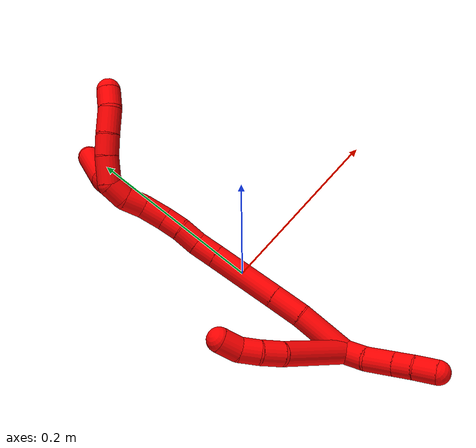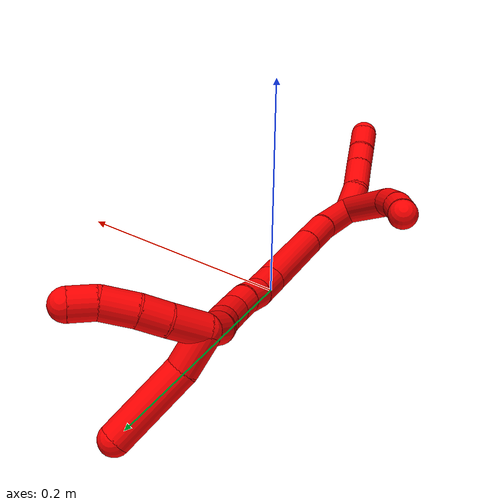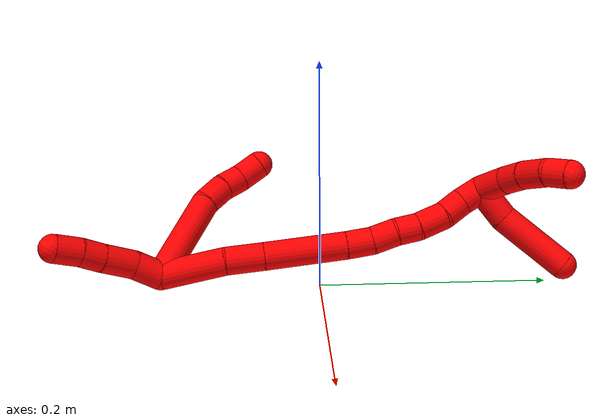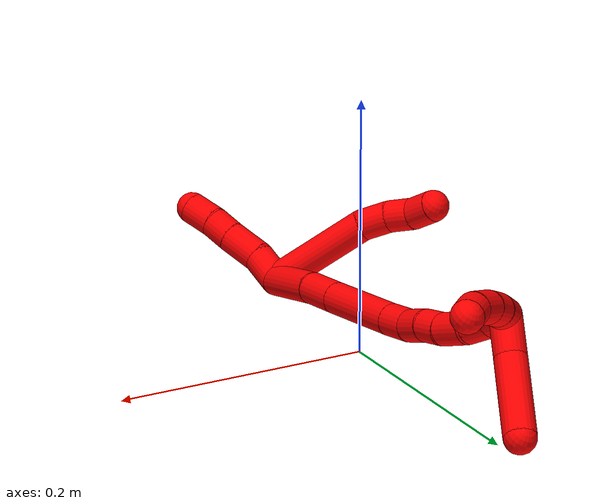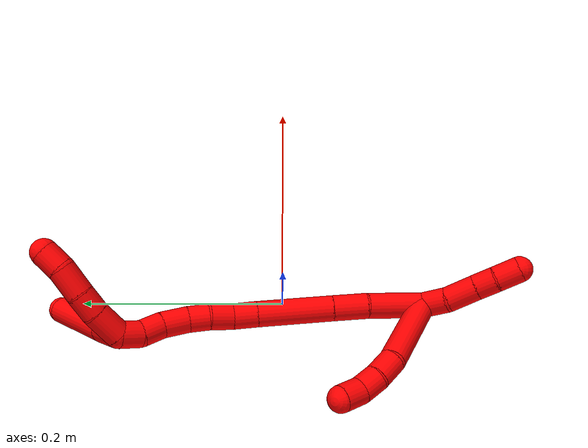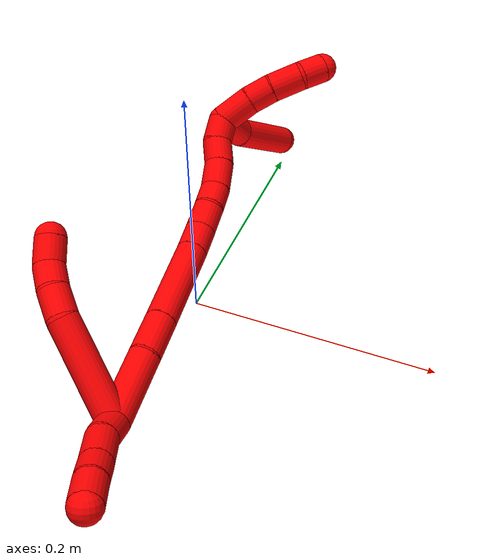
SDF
<sdf version="1.7">
 <world name="default">
  <model name="photoneo_s_sensor">
   <static>1</static>
   <pose>0 0 2 1.57079 1.57079 3.14159</pose>
   <link name="link">
    <inertial><mass>0.1</mass></inertial>
    <sensor name="sensor" type="depth">
     <update_rate>30</update_rate>
     <camera>
      <horizontal_fov>1.22</horizontal_fov>
      <image><width>1920</width><height>1200</height><format>B8G8R8</format></image>
      <clip><near>0.1</near><far>4</far></clip>
      <depth_camera><output>points</output></depth_camera>
     </camera>
     <plugin name="camera_plugin" filename="libgazebo_ros_depth_camera.so">
      <baseline>0.2</baseline>
      <alwaysOn>1</alwaysOn>
      <updateRate>0.0</updateRate>
      <cameraName>camera_ir</cameraName>
      <imageTopicName>/camera/color/image_raw</imageTopicName>
      <cameraInfoTopicName>/camera/color/camera_info</cameraInfoTopicName>
      <depthImageTopicName>/camera/depth/image_raw</depthImageTopicName>
      <depthImageCameraInfoTopicName>/camera/depth/camera_info</depthImageCameraInfoTopicName>
      <pointCloudTopicName>/camera/depth/points</pointCloudTopicName>
      <frameName>fr_optical</frameName>
      <pointCloudCutoff>0.1</pointCloudCutoff>
      <pointCloudCutoffMax>2.0</pointCloudCutoffMax>
      <distortionK1>0</distortionK1>
      <distortionK2>0</distortionK2>
      <distortionK3>0</distortionK3>
      <distortionT1>0</distortionT1>
      <distortionT2>0</distortionT2>
      <CxPrime>0</CxPrime>
      <Cx>0</Cx>
      <Cy>0</Cy>
      <focalLength>0</focalLength>
      <hackBaseline>0</hackBaseline>
     </plugin>
    </sensor>
   </link>
  </model>
  <model name="bin">
   <static>1</static>
   <link name="bottom">
    <collision name="collision-bottom">
     <pose>0 0 -0.01 0 -0 0</pose>
     <geometry><box><size>0.8 0.6 0.02</size></box></geometry>
     <surface>
      <friction><ode><mu>100</mu><mu2>100</mu2></ode></friction>
      <contact><collide_bitmask>65535</collide_bitmask></contact>
     </surface>
    </collision>
   </link>
   <link name="west_wall">
    <collision name="collision-west_wall">
     <pose>-0.41 0 0.1 0 -0 0</pose>
     <geometry><box><size>0.02 0.6 0.2</size></box></geometry>
     <surface>
      <friction><ode><mu>100</mu><mu2>100</mu2></ode></friction>
      <contact><collide_bitmask>65535</collide_bitmask></contact>
     </surface>
    </collision>
   </link>
   <link name="east_wall">
    <collision name="collision-east_wall">
     <pose>0.41 0 0.1 0 -0 0</pose>
     <geometry><box><size>0.02 0.6 0.2</size></box></geometry>
     <surface>
      <friction><ode><mu>100</mu><mu2>100</mu2></ode></friction>
      <contact><collide_bitmask>65535</collide_bitmask></contact>
     </surface>
    </collision>
   </link>
   <link name="south_wall">
    <collision name="collision-south_wall">
     <pose>0 -0.31 0.1 0 -0 0</pose>
     <geometry><box><size>0.8 0.02 0.2</size></box></geometry>
     <surface>
      <friction><ode><mu>100</mu><mu2>100</mu2></ode></friction>
      <contact><collide_bitmask>65535</collide_bitmask></contact>
     </surface>
    </collision>
   </link>
   <link name="north_wall">
    <collision name="collision-north_wall">
     <pose>0 0.31 0.1 0 -0 0</pose>
     <geometry><box><size>0.8 0.02 0.2</size></box></geometry>
     <surface>
      <friction><ode><mu>100</mu><mu2>100</mu2></ode></friction>
      <contact><collide_bitmask>65535</collide_bitmask></contact>
     </surface>
    </collision>
   </link>
  </model>
  <model name="2">
   <static>0</static>
   <link name="2">
    <collision name="collision-cylinder-e_1_2_8">
     <pose>-0.021645 -0.002136 0.035648 0.05984 -0.544892 -0.016723</pose>
     <geometry><cylinder><radius>0.0125</radius><length>0.083518</length></cylinder></geometry>
     <surface>
      <friction><ode><mu>1.16</mu><mu2>1.16</mu2><slip1>0</slip1><slip2>0</slip2></ode></friction>
      <contact><ode><kp>1e+06</kp><kd>1</kd><max_vel>0</max_vel><min_depth>0.001</min_depth></ode></contact>
     </surface>
    </collision>
    <visual name="visual-cylinder-e_1_2_8">
     <pose>-0.021645 -0.002136 0.035648 0.05984 -0.544892 -0.016723</pose>
     <geometry><cylinder><radius>0.0125</radius><length>0.083518</length></cylinder></geometry>
     <material><ambient>1 0 0 1</ambient></material>
    </visual>
    <collision name="collision-cylinder-e_2_8_9">
     <pose>-0.050026 -0.001764 0.080783 -0.258385 -0.601605 0.08056</pose>
     <geometry><cylinder><radius>0.0125</radius><length>0.023805</length></cylinder></geometry>
     <surface>
      <friction><ode><mu>1.16</mu><mu2>1.16</mu2><slip1>0</slip1><slip2>0</slip2></ode></friction>
      <contact><ode><kp>1e+06</kp><kd>1</kd><max_vel>0</max_vel><min_depth>0.001</min_depth></ode></contact>
     </surface>
    </collision>
    <visual name="visual-cylinder-e_2_8_9">
     <pose>-0.050026 -0.001764 0.080783 -0.258385 -0.601605 0.08056</pose>
     <geometry><cylinder><radius>0.0125</radius><length>0.023805</length></cylinder></geometry>
     <material><ambient>1 0 0 1</ambient></material>
    </visual>
    <collision name="collision-cylinder-e_3_9_10">
     <pose>-0.062545 0.004807 0.097766 -0.496737 -0.595877 0.155439</pose>
     <geometry><cylinder><radius>0.0125</radius><length>0.020605</length></cylinder></geometry>
     <surface>
      <friction><ode><mu>1.16</mu><mu2>1.16</mu2><slip1>0</slip1><slip2>0</slip2></ode></friction>
      <contact><ode><kp>1e+06</kp><kd>1</kd><max_vel>0</max_vel><min_depth>0.001</min_depth></ode></contact>
     </surface>
    </collision>
    <visual name="visual-cylinder-e_3_9_10">
     <pose>-0.062545 0.004807 0.097766 -0.496737 -0.595877 0.155439</pose>
     <geometry><cylinder><radius>0.0125</radius><length>0.020605</length></cylinder></geometry>
     <material><ambient>1 0 0 1</ambient></material>
    </visual>
    <collision name="collision-cylinder-e_4_10_6">
     <pose>-0.071147 0.013019 0.115092 -0.399385 -0.258442 0.052587</pose>
     <geometry><cylinder><radius>0.0125</radius><length>0.022072</length></cylinder></geometry>
     <surface>
      <friction><ode><mu>1.16</mu><mu2>1.16</mu2><slip1>0</slip1><slip2>0</slip2></ode></friction>
      <contact><ode><kp>1e+06</kp><kd>1</kd><max_vel>0</max_vel><min_depth>0.001</min_depth></ode></contact>
     </surface>
    </collision>
    <visual name="visual-cylinder-e_4_10_6">
     <pose>-0.071147 0.013019 0.115092 -0.399385 -0.258442 0.052587</pose>
     <geometry><cylinder><radius>0.0125</radius><length>0.022072</length></cylinder></geometry>
     <material><ambient>1 0 0 1</ambient></material>
    </visual>
    <collision name="collision-cylinder-e_1_2_11">
     <pose>0.004972 -0.011969 -0.001146 1.66623 0.392115 0.430293</pose>
     <geometry><cylinder><radius>0.0125</radius><length>0.026021</length></cylinder></geometry>
     <surface>
      <friction><ode><mu>1.16</mu><mu2>1.16</mu2><slip1>0</slip1><slip2>0</slip2></ode></friction>
      <contact><ode><kp>1e+06</kp><kd>1</kd><max_vel>0</max_vel><min_depth>0.001</min_depth></ode></contact>
     </surface>
    </collision>
    <visual name="visual-cylinder-e_1_2_11">
     <pose>0.004972 -0.011969 -0.001146 1.66623 0.392115 0.430293</pose>
     <geometry><cylinder><radius>0.0125</radius><length>0.026021</length></cylinder></geometry>
     <material><ambient>1 0 0 1</ambient></material>
    </visual>
    <collision name="collision-cylinder-e_2_11_12">
     <pose>0.018027 -0.036073 -0.005689 1.84377 0.570289 0.737576</pose>
     <geometry><cylinder><radius>0.0125</radius><length>0.029945</length></cylinder></geometry>
     <surface>
      <friction><ode><mu>1.16</mu><mu2>1.16</mu2><slip1>0</slip1><slip2>0</slip2></ode></friction>
      <contact><ode><kp>1e+06</kp><kd>1</kd><max_vel>0</max_vel><min_depth>0.001</min_depth></ode></contact>
     </surface>
    </collision>
    <visual name="visual-cylinder-e_2_11_12">
     <pose>0.018027 -0.036073 -0.005689 1.84377 0.570289 0.737576</pose>
     <geometry><cylinder><radius>0.0125</radius><length>0.029945</length></cylinder></geometry>
     <material><ambient>1 0 0 1</ambient></material>
    </visual>
    <collision name="collision-cylinder-e_3_12_13">
     <pose>0.031449 -0.056567 -0.010867 1.78068 0.558421 0.680831</pose>
     <geometry><cylinder><radius>0.0125</radius><length>0.020151</length></cylinder></geometry>
     <surface>
      <friction><ode><mu>1.16</mu><mu2>1.16</mu2><slip1>0</slip1><slip2>0</slip2></ode></friction>
      <contact><ode><kp>1e+06</kp><kd>1</kd><max_vel>0</max_vel><min_depth>0.001</min_depth></ode></contact>
     </surface>
    </collision>
    <visual name="visual-cylinder-e_3_12_13">
     <pose>0.031449 -0.056567 -0.010867 1.78068 0.558421 0.680831</pose>
     <geometry><cylinder><radius>0.0125</radius><length>0.020151</length></cylinder></geometry>
     <material><ambient>1 0 0 1</ambient></material>
    </visual>
    <collision name="collision-cylinder-e_4_13_5">
     <pose>0.043067 -0.074444 -0.01619 1.92704 0.553711 0.776358</pose>
     <geometry><cylinder><radius>0.0125</radius><length>0.023883</length></cylinder></geometry>
     <surface>
      <friction><ode><mu>1.16</mu><mu2>1.16</mu2><slip1>0</slip1><slip2>0</slip2></ode></friction>
      <contact><ode><kp>1e+06</kp><kd>1</kd><max_vel>0</max_vel><min_depth>0.001</min_depth></ode></contact>
     </surface>
    </collision>
    <visual name="visual-cylinder-e_4_13_5">
     <pose>0.043067 -0.074444 -0.01619 1.92704 0.553711 0.776358</pose>
     <geometry><cylinder><radius>0.0125</radius><length>0.023883</length></cylinder></geometry>
     <material><ambient>1 0 0 1</ambient></material>
    </visual>
    <collision name="collision-cylinder-e_1_2_14">
     <pose>-0.002404 0.020836 0.019638 -0.814973 -0.083781 0.036181</pose>
     <geometry><cylinder><radius>0.0125</radius><length>0.057466</length></cylinder></geometry>
     <surface>
      <friction><ode><mu>1.16</mu><mu2>1.16</mu2><slip1>0</slip1><slip2>0</slip2></ode></friction>
      <contact><ode><kp>1e+06</kp><kd>1</kd><max_vel>0</max_vel><min_depth>0.001</min_depth></ode></contact>
     </surface>
    </collision>
    <visual name="visual-cylinder-e_1_2_14">
     <pose>-0.002404 0.020836 0.019638 -0.814973 -0.083781 0.036181</pose>
     <geometry><cylinder><radius>0.0125</radius><length>0.057466</length></cylinder></geometry>
     <material><ambient>1 0 0 1</ambient></material>
    </visual>
    <collision name="collision-cylinder-e_2_14_15">
     <pose>-0.007609 0.054976 0.049455 -0.917732 -0.165602 0.081955</pose>
     <geometry><cylinder><radius>0.0125</radius><length>0.033968</length></cylinder></geometry>
     <surface>
      <friction><ode><mu>1.16</mu><mu2>1.16</mu2><slip1>0</slip1><slip2>0</slip2></ode></friction>
      <contact><ode><kp>1e+06</kp><kd>1</kd><max_vel>0</max_vel><min_depth>0.001</min_depth></ode></contact>
     </surface>
    </collision>
    <visual name="visual-cylinder-e_2_14_15">
     <pose>-0.007609 0.054976 0.049455 -0.917732 -0.165602 0.081955</pose>
     <geometry><cylinder><radius>0.0125</radius><length>0.033968</length></cylinder></geometry>
     <material><ambient>1 0 0 1</ambient></material>
    </visual>
    <collision name="collision-cylinder-e_3_15_16">
     <pose>-0.016616 0.096834 0.081895 -0.908594 -0.169798 0.083075</pose>
     <geometry><cylinder><radius>0.0125</radius><length>0.073469</length></cylinder></geometry>
     <surface>
      <friction><ode><mu>1.16</mu><mu2>1.16</mu2><slip1>0</slip1><slip2>0</slip2></ode></friction>
      <contact><ode><kp>1e+06</kp><kd>1</kd><max_vel>0</max_vel><min_depth>0.001</min_depth></ode></contact>
     </surface>
    </collision>
    <visual name="visual-cylinder-e_3_15_16">
     <pose>-0.016616 0.096834 0.081895 -0.908594 -0.169798 0.083075</pose>
     <geometry><cylinder><radius>0.0125</radius><length>0.073469</length></cylinder></geometry>
     <material><ambient>1 0 0 1</ambient></material>
    </visual>
    <collision name="collision-cylinder-e_4_16_17">
     <pose>-0.024939 0.134395 0.111814 -0.866265 -0.177051 0.08204</pose>
     <geometry><cylinder><radius>0.0125</radius><length>0.024021</length></cylinder></geometry>
     <surface>
      <friction><ode><mu>1.16</mu><mu2>1.16</mu2><slip1>0</slip1><slip2>0</slip2></ode></friction>
      <contact><ode><kp>1e+06</kp><kd>1</kd><max_vel>0</max_vel><min_depth>0.001</min_depth></ode></contact>
     </surface>
    </collision>
    <visual name="visual-cylinder-e_4_16_17">
     <pose>-0.024939 0.134395 0.111814 -0.866265 -0.177051 0.08204</pose>
     <geometry><cylinder><radius>0.0125</radius><length>0.024021</length></cylinder></geometry>
     <material><ambient>1 0 0 1</ambient></material>
    </visual>
    <collision name="collision-cylinder-e_5_17_18">
     <pose>-0.027762 0.150576 0.128278 -0.683469 -0.062219 0.022137</pose>
     <geometry><cylinder><radius>0.0125</radius><length>0.02276</length></cylinder></geometry>
     <surface>
      <friction><ode><mu>1.16</mu><mu2>1.16</mu2><slip1>0</slip1><slip2>0</slip2></ode></friction>
      <contact><ode><kp>1e+06</kp><kd>1</kd><max_vel>0</max_vel><min_depth>0.001</min_depth></ode></contact>
     </surface>
    </collision>
    <visual name="visual-cylinder-e_5_17_18">
     <pose>-0.027762 0.150576 0.128278 -0.683469 -0.062219 0.022137</pose>
     <geometry><cylinder><radius>0.0125</radius><length>0.02276</length></cylinder></geometry>
     <material><ambient>1 0 0 1</ambient></material>
    </visual>
    <collision name="collision-cylinder-e_6_18_19">
     <pose>-0.030325 0.164913 0.143847 -0.814349 -0.186165 0.080478</pose>
     <geometry><cylinder><radius>0.0125</radius><length>0.02005</length></cylinder></geometry>
     <surface>
      <friction><ode><mu>1.16</mu><mu2>1.16</mu2><slip1>0</slip1><slip2>0</slip2></ode></friction>
      <contact><ode><kp>1e+06</kp><kd>1</kd><max_vel>0</max_vel><min_depth>0.001</min_depth></ode></contact>
     </surface>
    </collision>
    <visual name="visual-cylinder-e_6_18_19">
     <pose>-0.030325 0.164913 0.143847 -0.814349 -0.186165 0.080478</pose>
     <geometry><cylinder><radius>0.0125</radius><length>0.02005</length></cylinder></geometry>
     <material><ambient>1 0 0 1</ambient></material>
    </visual>
    <collision name="collision-cylinder-e_7_19_20">
     <pose>-0.035253 0.179433 0.160786 -0.625772 -0.240007 0.077981</pose>
     <geometry><cylinder><radius>0.0125</radius><length>0.025853</length></cylinder></geometry>
     <surface>
      <friction><ode><mu>1.16</mu><mu2>1.16</mu2><slip1>0</slip1><slip2>0</slip2></ode></friction>
      <contact><ode><kp>1e+06</kp><kd>1</kd><max_vel>0</max_vel><min_depth>0.001</min_depth></ode></contact>
     </surface>
    </collision>
    <visual name="visual-cylinder-e_7_19_20">
     <pose>-0.035253 0.179433 0.160786 -0.625772 -0.240007 0.077981</pose>
     <geometry><cylinder><radius>0.0125</radius><length>0.025853</length></cylinder></geometry>
     <material><ambient>1 0 0 1</ambient></material>
    </visual>
    <collision name="collision-cylinder-e_8_20_21">
     <pose>-0.042051 0.190673 0.18041 -0.390238 -0.349674 0.069792</pose>
     <geometry><cylinder><radius>0.0125</radius><length>0.021747</length></cylinder></geometry>
     <surface>
      <friction><ode><mu>1.16</mu><mu2>1.16</mu2><slip1>0</slip1><slip2>0</slip2></ode></friction>
      <contact><ode><kp>1e+06</kp><kd>1</kd><max_vel>0</max_vel><min_depth>0.001</min_depth></ode></contact>
     </surface>
    </collision>
    <visual name="visual-cylinder-e_8_20_21">
     <pose>-0.042051 0.190673 0.18041 -0.390238 -0.349674 0.069792</pose>
     <geometry><cylinder><radius>0.0125</radius><length>0.021747</length></cylinder></geometry>
     <material><ambient>1 0 0 1</ambient></material>
    </visual>
    <collision name="collision-cylinder-e_9_21_1">
     <pose>-0.04596 0.199279 0.199048 -0.474419 -0.017776 0.004298</pose>
     <geometry><cylinder><radius>0.0125</radius><length>0.020667</length></cylinder></geometry>
     <surface>
      <friction><ode><mu>1.16</mu><mu2>1.16</mu2><slip1>0</slip1><slip2>0</slip2></ode></friction>
      <contact><ode><kp>1e+06</kp><kd>1</kd><max_vel>0</max_vel><min_depth>0.001</min_depth></ode></contact>
     </surface>
    </collision>
    <visual name="visual-cylinder-e_9_21_1">
     <pose>-0.04596 0.199279 0.199048 -0.474419 -0.017776 0.004298</pose>
     <geometry><cylinder><radius>0.0125</radius><length>0.020667</length></cylinder></geometry>
     <material><ambient>1 0 0 1</ambient></material>
    </visual>
    <collision name="collision-cylinder-e_1_1_22">
     <pose>-0.036628 0.210923 0.217014 -0.668018 0.705215 -0.254015</pose>
     <geometry><cylinder><radius>0.0125</radius><length>0.02936</length></cylinder></geometry>
     <surface>
      <friction><ode><mu>1.16</mu><mu2>1.16</mu2><slip1>0</slip1><slip2>0</slip2></ode></friction>
      <contact><ode><kp>1e+06</kp><kd>1</kd><max_vel>0</max_vel><min_depth>0.001</min_depth></ode></contact>
     </surface>
    </collision>
    <visual name="visual-cylinder-e_1_1_22">
     <pose>-0.036628 0.210923 0.217014 -0.668018 0.705215 -0.254015</pose>
     <geometry><cylinder><radius>0.0125</radius><length>0.02936</length></cylinder></geometry>
     <material><ambient>1 0 0 1</ambient></material>
    </visual>
    <collision name="collision-cylinder-e_2_22_23">
     <pose>-0.018898 0.222834 0.231147 -0.749553 0.842982 -0.349152</pose>
     <geometry><cylinder><radius>0.0125</radius><length>0.022005</length></cylinder></geometry>
     <surface>
      <friction><ode><mu>1.16</mu><mu2>1.16</mu2><slip1>0</slip1><slip2>0</slip2></ode></friction>
      <contact><ode><kp>1e+06</kp><kd>1</kd><max_vel>0</max_vel><min_depth>0.001</min_depth></ode></contact>
     </surface>
    </collision>
    <visual name="visual-cylinder-e_2_22_23">
     <pose>-0.018898 0.222834 0.231147 -0.749553 0.842982 -0.349152</pose>
     <geometry><cylinder><radius>0.0125</radius><length>0.022005</length></cylinder></geometry>
     <material><ambient>1 0 0 1</ambient></material>
    </visual>
    <collision name="collision-cylinder-e_3_23_24">
     <pose>-0.000363 0.235085 0.241838 -0.937499 0.852965 -0.452308</pose>
     <geometry><cylinder><radius>0.0125</radius><length>0.027401</length></cylinder></geometry>
     <surface>
      <friction><ode><mu>1.16</mu><mu2>1.16</mu2><slip1>0</slip1><slip2>0</slip2></ode></friction>
      <contact><ode><kp>1e+06</kp><kd>1</kd><max_vel>0</max_vel><min_depth>0.001</min_depth></ode></contact>
     </surface>
    </collision>
    <visual name="visual-cylinder-e_3_23_24">
     <pose>-0.000363 0.235085 0.241838 -0.937499 0.852965 -0.452308</pose>
     <geometry><cylinder><radius>0.0125</radius><length>0.027401</length></cylinder></geometry>
     <material><ambient>1 0 0 1</ambient></material>
    </visual>
    <collision name="collision-cylinder-e_4_24_4">
     <pose>0.016229 0.250174 0.250655 -1.15191 0.632062 -0.418481</pose>
     <geometry><cylinder><radius>0.0125</radius><length>0.021234</length></cylinder></geometry>
     <surface>
      <friction><ode><mu>1.16</mu><mu2>1.16</mu2><slip1>0</slip1><slip2>0</slip2></ode></friction>
      <contact><ode><kp>1e+06</kp><kd>1</kd><max_vel>0</max_vel><min_depth>0.001</min_depth></ode></contact>
     </surface>
    </collision>
    <visual name="visual-cylinder-e_4_24_4">
     <pose>0.016229 0.250174 0.250655 -1.15191 0.632062 -0.418481</pose>
     <geometry><cylinder><radius>0.0125</radius><length>0.021234</length></cylinder></geometry>
     <material><ambient>1 0 0 1</ambient></material>
    </visual>
    <collision name="collision-cylinder-e_1_1_25">
     <pose>-0.04758 0.219148 0.202349 -1.94157 -0.088172 0.128783</pose>
     <geometry><cylinder><radius>0.0125</radius><length>0.032635</length></cylinder></geometry>
     <surface>
      <friction><ode><mu>1.16</mu><mu2>1.16</mu2><slip1>0</slip1><slip2>0</slip2></ode></friction>
      <contact><ode><kp>1e+06</kp><kd>1</kd><max_vel>0</max_vel><min_depth>0.001</min_depth></ode></contact>
     </surface>
    </collision>
    <visual name="visual-cylinder-e_1_1_25">
     <pose>-0.04758 0.219148 0.202349 -1.94157 -0.088172 0.128783</pose>
     <geometry><cylinder><radius>0.0125</radius><length>0.032635</length></cylinder></geometry>
     <material><ambient>1 0 0 1</ambient></material>
    </visual>
    <collision name="collision-cylinder-e_2_25_3">
     <pose>-0.046911 0.26756 0.191592 -1.71612 0.062571 -0.072387</pose>
     <geometry><cylinder><radius>0.0125</radius><length>0.067365</length></cylinder></geometry>
     <surface>
      <friction><ode><mu>1.16</mu><mu2>1.16</mu2><slip1>0</slip1><slip2>0</slip2></ode></friction>
      <contact><ode><kp>1e+06</kp><kd>1</kd><max_vel>0</max_vel><min_depth>0.001</min_depth></ode></contact>
     </surface>
    </collision>
    <visual name="visual-cylinder-e_2_25_3">
     <pose>-0.046911 0.26756 0.191592 -1.71612 0.062571 -0.072387</pose>
     <geometry><cylinder><radius>0.0125</radius><length>0.067365</length></cylinder></geometry>
     <material><ambient>1 0 0 1</ambient></material>
    </visual>
    <collision name="collision-sphere-3">
     <pose>-0.044805 0.300822 0.186723 0 -0 0</pose>
     <geometry><sphere><radius>0.0125</radius></sphere></geometry>
     <surface>
      <friction><ode><mu>1.16</mu><mu2>1.16</mu2><slip1>0</slip1><slip2>0</slip2></ode></friction>
      <contact><ode><kp>1e+06</kp><kd>1</kd><max_vel>0</max_vel><min_depth>0.001</min_depth></ode></contact>
     </surface>
    </collision>
    <visual name="visual-sphere-3">
     <pose>-0.044805 0.300822 0.186723 0 -0 0</pose>
     <geometry><sphere><radius>0.0125</radius></sphere></geometry>
     <material><ambient>1 0 0 1</ambient></material>
    </visual>
    <collision name="collision-sphere-25">
     <pose>-0.049017 0.234298 0.19646 0 -0 0</pose>
     <geometry><sphere><radius>0.0125</radius></sphere></geometry>
     <surface>
      <friction><ode><mu>1.16</mu><mu2>1.16</mu2><slip1>0</slip1><slip2>0</slip2></ode></friction>
      <contact><ode><kp>1e+06</kp><kd>1</kd><max_vel>0</max_vel><min_depth>0.001</min_depth></ode></contact>
     </surface>
    </collision>
    <visual name="visual-sphere-25">
     <pose>-0.049017 0.234298 0.19646 0 -0 0</pose>
     <geometry><sphere><radius>0.0125</radius></sphere></geometry>
     <material><ambient>1 0 0 1</ambient></material>
    </visual>
    <collision name="collision-sphere-4">
     <pose>0.022502 0.258 0.254139 0 -0 0</pose>
     <geometry><sphere><radius>0.0125</radius></sphere></geometry>
     <surface>
      <friction><ode><mu>1.16</mu><mu2>1.16</mu2><slip1>0</slip1><slip2>0</slip2></ode></friction>
      <contact><ode><kp>1e+06</kp><kd>1</kd><max_vel>0</max_vel><min_depth>0.001</min_depth></ode></contact>
     </surface>
    </collision>
    <visual name="visual-sphere-4">
     <pose>0.022502 0.258 0.254139 0 -0 0</pose>
     <geometry><sphere><radius>0.0125</radius></sphere></geometry>
     <material><ambient>1 0 0 1</ambient></material>
    </visual>
    <collision name="collision-sphere-24">
     <pose>0.009956 0.242349 0.247171 0 -0 0</pose>
     <geometry><sphere><radius>0.0125</radius></sphere></geometry>
     <surface>
      <friction><ode><mu>1.16</mu><mu2>1.16</mu2><slip1>0</slip1><slip2>0</slip2></ode></friction>
      <contact><ode><kp>1e+06</kp><kd>1</kd><max_vel>0</max_vel><min_depth>0.001</min_depth></ode></contact>
     </surface>
    </collision>
    <visual name="visual-sphere-24">
     <pose>0.009956 0.242349 0.247171 0 -0 0</pose>
     <geometry><sphere><radius>0.0125</radius></sphere></geometry>
     <material><ambient>1 0 0 1</ambient></material>
    </visual>
    <collision name="collision-sphere-23">
     <pose>-0.010683 0.22782 0.236505 0 -0 0</pose>
     <geometry><sphere><radius>0.0125</radius></sphere></geometry>
     <surface>
      <friction><ode><mu>1.16</mu><mu2>1.16</mu2><slip1>0</slip1><slip2>0</slip2></ode></friction>
      <contact><ode><kp>1e+06</kp><kd>1</kd><max_vel>0</max_vel><min_depth>0.001</min_depth></ode></contact>
     </surface>
    </collision>
    <visual name="visual-sphere-23">
     <pose>-0.010683 0.22782 0.236505 0 -0 0</pose>
     <geometry><sphere><radius>0.0125</radius></sphere></geometry>
     <material><ambient>1 0 0 1</ambient></material>
    </visual>
    <collision name="collision-sphere-22">
     <pose>-0.027113 0.217847 0.22579 0 -0 0</pose>
     <geometry><sphere><radius>0.0125</radius></sphere></geometry>
     <surface>
      <friction><ode><mu>1.16</mu><mu2>1.16</mu2><slip1>0</slip1><slip2>0</slip2></ode></friction>
      <contact><ode><kp>1e+06</kp><kd>1</kd><max_vel>0</max_vel><min_depth>0.001</min_depth></ode></contact>
     </surface>
    </collision>
    <visual name="visual-sphere-22">
     <pose>-0.027113 0.217847 0.22579 0 -0 0</pose>
     <geometry><sphere><radius>0.0125</radius></sphere></geometry>
     <material><ambient>1 0 0 1</ambient></material>
    </visual>
    <collision name="collision-sphere-1">
     <pose>-0.046144 0.203999 0.208239 0 -0 0</pose>
     <geometry><sphere><radius>0.0125</radius></sphere></geometry>
     <surface>
      <friction><ode><mu>1.16</mu><mu2>1.16</mu2><slip1>0</slip1><slip2>0</slip2></ode></friction>
      <contact><ode><kp>1e+06</kp><kd>1</kd><max_vel>0</max_vel><min_depth>0.001</min_depth></ode></contact>
     </surface>
    </collision>
    <visual name="visual-sphere-1">
     <pose>-0.046144 0.203999 0.208239 0 -0 0</pose>
     <geometry><sphere><radius>0.0125</radius></sphere></geometry>
     <material><ambient>1 0 0 1</ambient></material>
    </visual>
    <collision name="collision-sphere-21">
     <pose>-0.045776 0.194559 0.189857 0 -0 0</pose>
     <geometry><sphere><radius>0.0125</radius></sphere></geometry>
     <surface>
      <friction><ode><mu>1.16</mu><mu2>1.16</mu2><slip1>0</slip1><slip2>0</slip2></ode></friction>
      <contact><ode><kp>1e+06</kp><kd>1</kd><max_vel>0</max_vel><min_depth>0.001</min_depth></ode></contact>
     </surface>
    </collision>
    <visual name="visual-sphere-21">
     <pose>-0.045776 0.194559 0.189857 0 -0 0</pose>
     <geometry><sphere><radius>0.0125</radius></sphere></geometry>
     <material><ambient>1 0 0 1</ambient></material>
    </visual>
    <collision name="collision-sphere-11">
     <pose>0.009944 -0.023937 -0.002291 0 -0 0</pose>
     <geometry><sphere><radius>0.0125</radius></sphere></geometry>
     <surface>
      <friction><ode><mu>1.16</mu><mu2>1.16</mu2><slip1>0</slip1><slip2>0</slip2></ode></friction>
      <contact><ode><kp>1e+06</kp><kd>1</kd><max_vel>0</max_vel><min_depth>0.001</min_depth></ode></contact>
     </surface>
    </collision>
    <visual name="visual-sphere-11">
     <pose>0.009944 -0.023937 -0.002291 0 -0 0</pose>
     <geometry><sphere><radius>0.0125</radius></sphere></geometry>
     <material><ambient>1 0 0 1</ambient></material>
    </visual>
    <collision name="collision-sphere-6">
     <pose>-0.073968 0.017168 0.124922 0 -0 0</pose>
     <geometry><sphere><radius>0.0125</radius></sphere></geometry>
     <surface>
      <friction><ode><mu>1.16</mu><mu2>1.16</mu2><slip1>0</slip1><slip2>0</slip2></ode></friction>
      <contact><ode><kp>1e+06</kp><kd>1</kd><max_vel>0</max_vel><min_depth>0.001</min_depth></ode></contact>
     </surface>
    </collision>
    <visual name="visual-sphere-6">
     <pose>-0.073968 0.017168 0.124922 0 -0 0</pose>
     <geometry><sphere><radius>0.0125</radius></sphere></geometry>
     <material><ambient>1 0 0 1</ambient></material>
    </visual>
    <collision name="collision-sphere-10">
     <pose>-0.068327 0.00887 0.105262 0 -0 0</pose>
     <geometry><sphere><radius>0.0125</radius></sphere></geometry>
     <surface>
      <friction><ode><mu>1.16</mu><mu2>1.16</mu2><slip1>0</slip1><slip2>0</slip2></ode></friction>
      <contact><ode><kp>1e+06</kp><kd>1</kd><max_vel>0</max_vel><min_depth>0.001</min_depth></ode></contact>
     </surface>
    </collision>
    <visual name="visual-sphere-10">
     <pose>-0.068327 0.00887 0.105262 0 -0 0</pose>
     <geometry><sphere><radius>0.0125</radius></sphere></geometry>
     <material><ambient>1 0 0 1</ambient></material>
    </visual>
    <collision name="collision-sphere-9">
     <pose>-0.056763 0.000743 0.09027 0 -0 0</pose>
     <geometry><sphere><radius>0.0125</radius></sphere></geometry>
     <surface>
      <friction><ode><mu>1.16</mu><mu2>1.16</mu2><slip1>0</slip1><slip2>0</slip2></ode></friction>
      <contact><ode><kp>1e+06</kp><kd>1</kd><max_vel>0</max_vel><min_depth>0.001</min_depth></ode></contact>
     </surface>
    </collision>
    <visual name="visual-sphere-9">
     <pose>-0.056763 0.000743 0.09027 0 -0 0</pose>
     <geometry><sphere><radius>0.0125</radius></sphere></geometry>
     <material><ambient>1 0 0 1</ambient></material>
    </visual>
    <collision name="collision-sphere-2">
     <geometry><sphere><radius>0.0125</radius></sphere></geometry>
     <surface>
      <friction><ode><mu>1.16</mu><mu2>1.16</mu2><slip1>0</slip1><slip2>0</slip2></ode></friction>
      <contact><ode><kp>1e+06</kp><kd>1</kd><max_vel>0</max_vel><min_depth>0.001</min_depth></ode></contact>
     </surface>
    </collision>
    <visual name="visual-sphere-2">
     <geometry><sphere><radius>0.0125</radius></sphere></geometry>
     <material><ambient>1 0 0 1</ambient></material>
    </visual>
    <collision name="collision-sphere-19">
     <pose>-0.03218 0.172079 0.150609 0 -0 0</pose>
     <geometry><sphere><radius>0.0125</radius></sphere></geometry>
     <surface>
      <friction><ode><mu>1.16</mu><mu2>1.16</mu2><slip1>0</slip1><slip2>0</slip2></ode></friction>
      <contact><ode><kp>1e+06</kp><kd>1</kd><max_vel>0</max_vel><min_depth>0.001</min_depth></ode></contact>
     </surface>
    </collision>
    <visual name="visual-sphere-19">
     <pose>-0.03218 0.172079 0.150609 0 -0 0</pose>
     <geometry><sphere><radius>0.0125</radius></sphere></geometry>
     <material><ambient>1 0 0 1</ambient></material>
    </visual>
    <collision name="collision-sphere-8">
     <pose>-0.04329 -0.004271 0.071296 0 -0 0</pose>
     <geometry><sphere><radius>0.0125</radius></sphere></geometry>
     <surface>
      <friction><ode><mu>1.16</mu><mu2>1.16</mu2><slip1>0</slip1><slip2>0</slip2></ode></friction>
      <contact><ode><kp>1e+06</kp><kd>1</kd><max_vel>0</max_vel><min_depth>0.001</min_depth></ode></contact>
     </surface>
    </collision>
    <visual name="visual-sphere-8">
     <pose>-0.04329 -0.004271 0.071296 0 -0 0</pose>
     <geometry><sphere><radius>0.0125</radius></sphere></geometry>
     <material><ambient>1 0 0 1</ambient></material>
    </visual>
    <collision name="collision-sphere-12">
     <pose>0.02611 -0.04821 -0.009087 0 -0 0</pose>
     <geometry><sphere><radius>0.0125</radius></sphere></geometry>
     <surface>
      <friction><ode><mu>1.16</mu><mu2>1.16</mu2><slip1>0</slip1><slip2>0</slip2></ode></friction>
      <contact><ode><kp>1e+06</kp><kd>1</kd><max_vel>0</max_vel><min_depth>0.001</min_depth></ode></contact>
     </surface>
    </collision>
    <visual name="visual-sphere-12">
     <pose>0.02611 -0.04821 -0.009087 0 -0 0</pose>
     <geometry><sphere><radius>0.0125</radius></sphere></geometry>
     <material><ambient>1 0 0 1</ambient></material>
    </visual>
    <collision name="collision-sphere-13">
     <pose>0.036787 -0.064924 -0.012647 0 -0 0</pose>
     <geometry><sphere><radius>0.0125</radius></sphere></geometry>
     <surface>
      <friction><ode><mu>1.16</mu><mu2>1.16</mu2><slip1>0</slip1><slip2>0</slip2></ode></friction>
      <contact><ode><kp>1e+06</kp><kd>1</kd><max_vel>0</max_vel><min_depth>0.001</min_depth></ode></contact>
     </surface>
    </collision>
    <visual name="visual-sphere-13">
     <pose>0.036787 -0.064924 -0.012647 0 -0 0</pose>
     <geometry><sphere><radius>0.0125</radius></sphere></geometry>
     <material><ambient>1 0 0 1</ambient></material>
    </visual>
    <collision name="collision-sphere-5">
     <pose>0.049346 -0.083963 -0.019732 0 -0 0</pose>
     <geometry><sphere><radius>0.0125</radius></sphere></geometry>
     <surface>
      <friction><ode><mu>1.16</mu><mu2>1.16</mu2><slip1>0</slip1><slip2>0</slip2></ode></friction>
      <contact><ode><kp>1e+06</kp><kd>1</kd><max_vel>0</max_vel><min_depth>0.001</min_depth></ode></contact>
     </surface>
    </collision>
    <visual name="visual-sphere-5">
     <pose>0.049346 -0.083963 -0.019732 0 -0 0</pose>
     <geometry><sphere><radius>0.0125</radius></sphere></geometry>
     <material><ambient>1 0 0 1</ambient></material>
    </visual>
    <collision name="collision-sphere-14">
     <pose>-0.004809 0.041672 0.039277 0 -0 0</pose>
     <geometry><sphere><radius>0.0125</radius></sphere></geometry>
     <surface>
      <friction><ode><mu>1.16</mu><mu2>1.16</mu2><slip1>0</slip1><slip2>0</slip2></ode></friction>
      <contact><ode><kp>1e+06</kp><kd>1</kd><max_vel>0</max_vel><min_depth>0.001</min_depth></ode></contact>
     </surface>
    </collision>
    <visual name="visual-sphere-14">
     <pose>-0.004809 0.041672 0.039277 0 -0 0</pose>
     <geometry><sphere><radius>0.0125</radius></sphere></geometry>
     <material><ambient>1 0 0 1</ambient></material>
    </visual>
    <collision name="collision-sphere-15">
     <pose>-0.010408 0.06828 0.059634 0 -0 0</pose>
     <geometry><sphere><radius>0.0125</radius></sphere></geometry>
     <surface>
      <friction><ode><mu>1.16</mu><mu2>1.16</mu2><slip1>0</slip1><slip2>0</slip2></ode></friction>
      <contact><ode><kp>1e+06</kp><kd>1</kd><max_vel>0</max_vel><min_depth>0.001</min_depth></ode></contact>
     </surface>
    </collision>
    <visual name="visual-sphere-15">
     <pose>-0.010408 0.06828 0.059634 0 -0 0</pose>
     <geometry><sphere><radius>0.0125</radius></sphere></geometry>
     <material><ambient>1 0 0 1</ambient></material>
    </visual>
    <collision name="collision-sphere-16">
     <pose>-0.022823 0.125387 0.104157 0 -0 0</pose>
     <geometry><sphere><radius>0.0125</radius></sphere></geometry>
     <surface>
      <friction><ode><mu>1.16</mu><mu2>1.16</mu2><slip1>0</slip1><slip2>0</slip2></ode></friction>
      <contact><ode><kp>1e+06</kp><kd>1</kd><max_vel>0</max_vel><min_depth>0.001</min_depth></ode></contact>
     </surface>
    </collision>
    <visual name="visual-sphere-16">
     <pose>-0.022823 0.125387 0.104157 0 -0 0</pose>
     <geometry><sphere><radius>0.0125</radius></sphere></geometry>
     <material><ambient>1 0 0 1</ambient></material>
    </visual>
    <collision name="collision-sphere-17">
     <pose>-0.027054 0.143403 0.119472 0 -0 0</pose>
     <geometry><sphere><radius>0.0125</radius></sphere></geometry>
     <surface>
      <friction><ode><mu>1.16</mu><mu2>1.16</mu2><slip1>0</slip1><slip2>0</slip2></ode></friction>
      <contact><ode><kp>1e+06</kp><kd>1</kd><max_vel>0</max_vel><min_depth>0.001</min_depth></ode></contact>
     </surface>
    </collision>
    <visual name="visual-sphere-17">
     <pose>-0.027054 0.143403 0.119472 0 -0 0</pose>
     <geometry><sphere><radius>0.0125</radius></sphere></geometry>
     <material><ambient>1 0 0 1</ambient></material>
    </visual>
    <collision name="collision-sphere-18">
     <pose>-0.028469 0.157748 0.137085 0 -0 0</pose>
     <geometry><sphere><radius>0.0125</radius></sphere></geometry>
     <surface>
      <friction><ode><mu>1.16</mu><mu2>1.16</mu2><slip1>0</slip1><slip2>0</slip2></ode></friction>
      <contact><ode><kp>1e+06</kp><kd>1</kd><max_vel>0</max_vel><min_depth>0.001</min_depth></ode></contact>
     </surface>
    </collision>
    <visual name="visual-sphere-18">
     <pose>-0.028469 0.157748 0.137085 0 -0 0</pose>
     <geometry><sphere><radius>0.0125</radius></sphere></geometry>
     <material><ambient>1 0 0 1</ambient></material>
    </visual>
    <collision name="collision-sphere-20">
     <pose>-0.038326 0.186787 0.170963 0 -0 0</pose>
     <geometry><sphere><radius>0.0125</radius></sphere></geometry>
     <surface>
      <friction><ode><mu>1.16</mu><mu2>1.16</mu2><slip1>0</slip1><slip2>0</slip2></ode></friction>
      <contact><ode><kp>1e+06</kp><kd>1</kd><max_vel>0</max_vel><min_depth>0.001</min_depth></ode></contact>
     </surface>
    </collision>
    <visual name="visual-sphere-20">
     <pose>-0.038326 0.186787 0.170963 0 -0 0</pose>
     <geometry><sphere><radius>0.0125</radius></sphere></geometry>
     <material><ambient>1 0 0 1</ambient></material>
    </visual>
    <inertial>
     <pose>-0.020837 0.10257 0.1081 0 -0 0</pose>
     <mass>0.75</mass>
     <inertia>
      <ixx>0.000168</ixx>
      <ixy>0</ixy>
      <ixz>0</ixz>
      <iyy>0.000134</iyy>
      <iyz>0</iyz>
      <izz>-2.5e-05</izz>
     </inertia>
    </inertial>
   </link>
   <pose>-0.002182 -0.138733 0.011459 -0.516149 -0.301491 -0.117688</pose>
  </model>
 </world>
</sdf>
